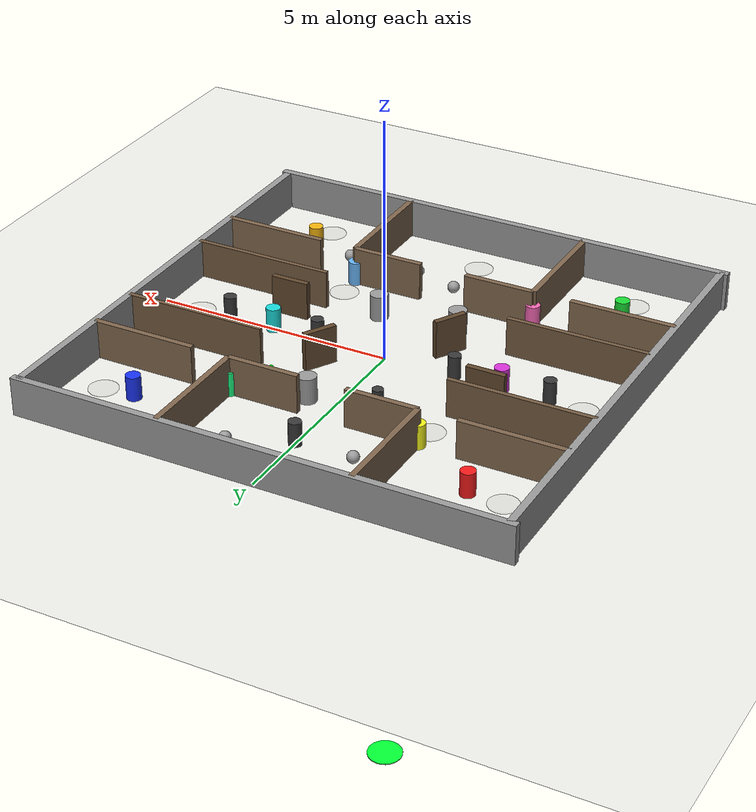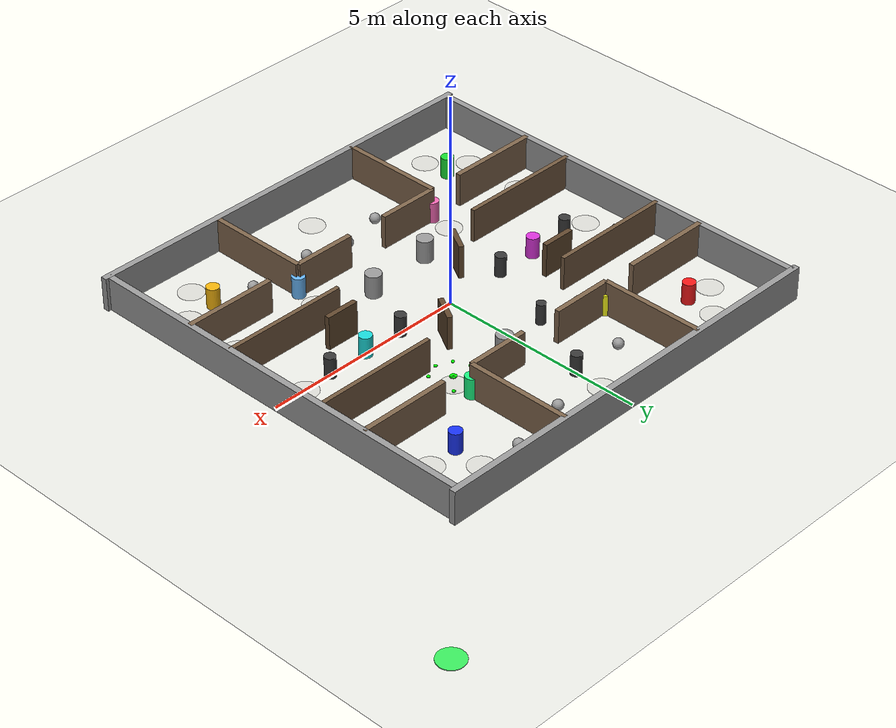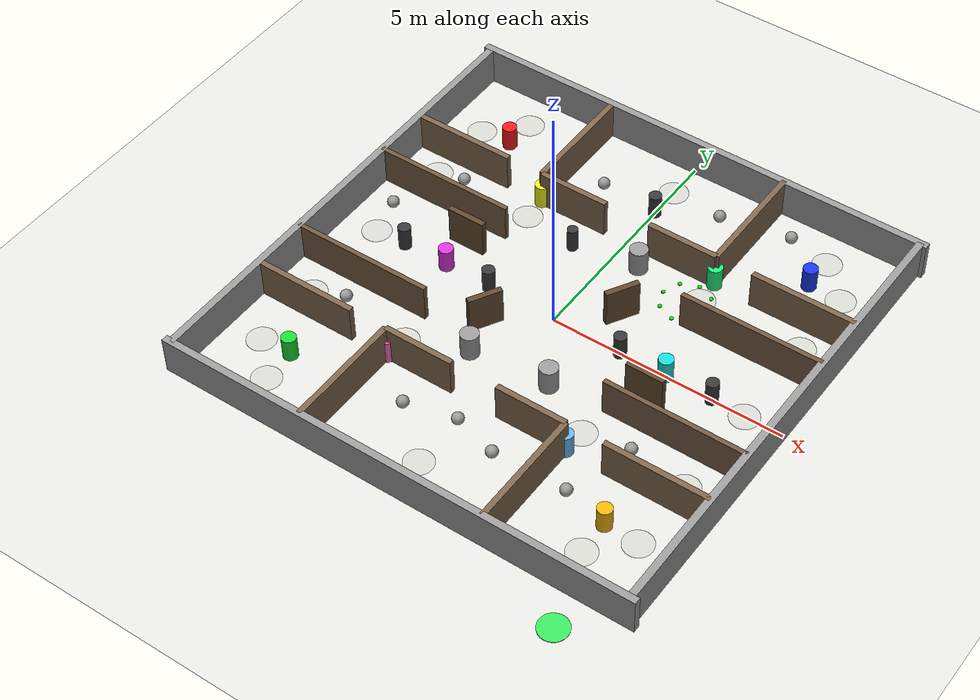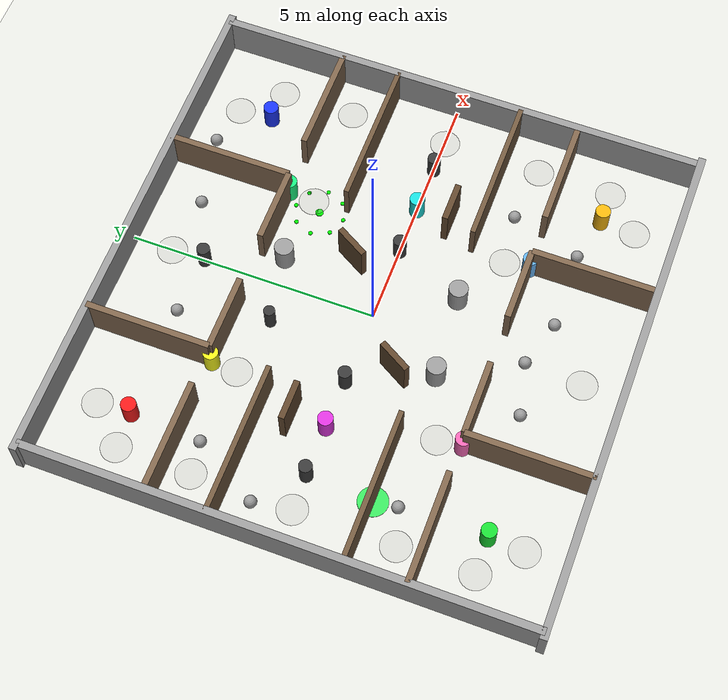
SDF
<sdf version="1.7">
 <world name="phase3_arena">
  <model name="ground_plane">
   <static>1</static>
   <link name="link">
    <collision name="collision">
     <geometry><plane><normal>0 0 1</normal><size>100 100</size></plane></geometry>
     <surface><friction><ode><mu>100</mu><mu2>50</mu2></ode></friction></surface>
    </collision>
    <visual name="visual">
     <cast_shadows>0</cast_shadows>
     <geometry><plane><normal>0 0 1</normal><size>100 100</size></plane></geometry>
     <material>
      <script><uri>file://media/materials/scripts/gazebo.material</uri><name>Gazebo/Grey</name></script>
     </material>
    </visual>
   </link>
  </model>
  <light name="sun" type="directional">
   <pose>0 0 10 0 -0 0</pose>
   <diffuse>0.8 0.8 0.8 1</diffuse>
   <specular>0.2 0.2 0.2 1</specular>
   <attenuation>
    <range>1000</range>
    <constant>0.9</constant>
    <linear>0.01</linear>
    <quadratic>0.001</quadratic>
   </attenuation>
   <direction>-0.5 0.1 -0.9</direction>
   <spot><inner_angle>0</inner_angle><outer_angle>0</outer_angle><falloff>0</falloff></spot>
  </light>
  <scene><shadows>0</shadows><ambient>0.4 0.4 0.4 1</ambient><background>0.7 0.7 0.7 1</background></scene>
  <physics type="ode">
   <real_time_update_rate>1000</real_time_update_rate>
   <max_step_size>0.001</max_step_size>
   <real_time_factor>1</real_time_factor>
   <ode>
    <solver>
     <type>quick</type>
     <iters>150</iters>
     <sor>1.4</sor>
     <use_dynamic_moi_rescaling>1</use_dynamic_moi_rescaling>
    </solver>
    <constraints>
     <cfm>1e-05</cfm>
     <erp>0.2</erp>
     <contact_max_correcting_vel>2000</contact_max_correcting_vel>
     <contact_surface_layer>0.01</contact_surface_layer>
    </constraints>
   </ode>
  </physics>
  <plugin name="gazebo_ros_state" filename="libgazebo_ros_state.so"><update_rate>25</update_rate></plugin>
  <model name="wN">
   <static>1</static>
   <pose>0 5 0.4 0 -0 0</pose>
   <link name="l">
    <collision name="c"><geometry><box><size>10.3 0.15 0.8</size></box></geometry></collision>
    <visual name="v">
     <geometry><box><size>10.3 0.15 0.8</size></box></geometry>
     <material><ambient>0.6 0.6 0.6 1</ambient><diffuse>0.6 0.6 0.6 1</diffuse></material>
    </visual>
   </link>
  </model>
  <model name="wS">
   <static>1</static>
   <pose>0 -5 0.4 0 -0 0</pose>
   <link name="l">
    <collision name="c"><geometry><box><size>10.3 0.15 0.8</size></box></geometry></collision>
    <visual name="v">
     <geometry><box><size>10.3 0.15 0.8</size></box></geometry>
     <material><ambient>0.6 0.6 0.6 1</ambient><diffuse>0.6 0.6 0.6 1</diffuse></material>
    </visual>
   </link>
  </model>
  <model name="wE">
   <static>1</static>
   <pose>5 0 0.4 0 -0 0</pose>
   <link name="l">
    <collision name="c"><geometry><box><size>0.15 10 0.8</size></box></geometry></collision>
    <visual name="v">
     <geometry><box><size>0.15 10 0.8</size></box></geometry>
     <material><ambient>0.6 0.6 0.6 1</ambient><diffuse>0.6 0.6 0.6 1</diffuse></material>
    </visual>
   </link>
  </model>
  <model name="wW">
   <static>1</static>
   <pose>-5 0 0.4 0 -0 0</pose>
   <link name="l">
    <collision name="c"><geometry><box><size>0.15 10 0.8</size></box></geometry></collision>
    <visual name="v">
     <geometry><box><size>0.15 10 0.8</size></box></geometry>
     <material><ambient>0.6 0.6 0.6 1</ambient><diffuse>0.6 0.6 0.6 1</diffuse></material>
    </visual>
   </link>
  </model>
  <model name="dU_L">
   <static>1</static>
   <pose>-3.9 2.5 0.4 0 -0 0</pose>
   <link name="l">
    <collision name="c"><geometry><box><size>2.2 0.12 0.8</size></box></geometry></collision>
    <visual name="v">
     <geometry><box><size>2.2 0.12 0.8</size></box></geometry>
     <material><ambient>0.5 0.4 0.3 1</ambient><diffuse>0.5 0.4 0.3 1</diffuse></material>
    </visual>
   </link>
  </model>
  <model name="dU_R">
   <static>1</static>
   <pose>3.9 2.5 0.4 0 -0 0</pose>
   <link name="l">
    <collision name="c"><geometry><box><size>2.2 0.12 0.8</size></box></geometry></collision>
    <visual name="v">
     <geometry><box><size>2.2 0.12 0.8</size></box></geometry>
     <material><ambient>0.5 0.4 0.3 1</ambient><diffuse>0.5 0.4 0.3 1</diffuse></material>
    </visual>
   </link>
  </model>
  <model name="dU_CL">
   <static>1</static>
   <pose>-1.25 2.5 0.4 0 -0 0</pose>
   <link name="l">
    <collision name="c"><geometry><box><size>1.5 0.12 0.8</size></box></geometry></collision>
    <visual name="v">
     <geometry><box><size>1.5 0.12 0.8</size></box></geometry>
     <material><ambient>0.5 0.4 0.3 1</ambient><diffuse>0.5 0.4 0.3 1</diffuse></material>
    </visual>
   </link>
  </model>
  <model name="dU_CR">
   <static>1</static>
   <pose>1.25 2.5 0.4 0 -0 0</pose>
   <link name="l">
    <collision name="c"><geometry><box><size>1.5 0.12 0.8</size></box></geometry></collision>
    <visual name="v">
     <geometry><box><size>1.5 0.12 0.8</size></box></geometry>
     <material><ambient>0.5 0.4 0.3 1</ambient><diffuse>0.5 0.4 0.3 1</diffuse></material>
    </visual>
   </link>
  </model>
  <model name="dD_L">
   <static>1</static>
   <pose>-3.9 -2.5 0.4 0 -0 0</pose>
   <link name="l">
    <collision name="c"><geometry><box><size>2.2 0.12 0.8</size></box></geometry></collision>
    <visual name="v">
     <geometry><box><size>2.2 0.12 0.8</size></box></geometry>
     <material><ambient>0.5 0.4 0.3 1</ambient><diffuse>0.5 0.4 0.3 1</diffuse></material>
    </visual>
   </link>
  </model>
  <model name="dD_R">
   <static>1</static>
   <pose>3.9 -2.5 0.4 0 -0 0</pose>
   <link name="l">
    <collision name="c"><geometry><box><size>2.2 0.12 0.8</size></box></geometry></collision>
    <visual name="v">
     <geometry><box><size>2.2 0.12 0.8</size></box></geometry>
     <material><ambient>0.5 0.4 0.3 1</ambient><diffuse>0.5 0.4 0.3 1</diffuse></material>
    </visual>
   </link>
  </model>
  <model name="dD_CL">
   <static>1</static>
   <pose>-1.25 -2.5 0.4 0 -0 0</pose>
   <link name="l">
    <collision name="c"><geometry><box><size>1.5 0.12 0.8</size></box></geometry></collision>
    <visual name="v">
     <geometry><box><size>1.5 0.12 0.8</size></box></geometry>
     <material><ambient>0.5 0.4 0.3 1</ambient><diffuse>0.5 0.4 0.3 1</diffuse></material>
    </visual>
   </link>
  </model>
  <model name="dD_CR">
   <static>1</static>
   <pose>1.25 -2.5 0.4 0 -0 0</pose>
   <link name="l">
    <collision name="c"><geometry><box><size>1.5 0.12 0.8</size></box></geometry></collision>
    <visual name="v">
     <geometry><box><size>1.5 0.12 0.8</size></box></geometry>
     <material><ambient>0.5 0.4 0.3 1</ambient><diffuse>0.5 0.4 0.3 1</diffuse></material>
    </visual>
   </link>
  </model>
  <model name="iU_L">
   <static>1</static>
   <pose>-3.5 1.3 0.4 0 -0 0</pose>
   <link name="l">
    <collision name="c"><geometry><box><size>3 0.1 0.8</size></box></geometry></collision>
    <visual name="v">
     <geometry><box><size>3 0.1 0.8</size></box></geometry>
     <material><ambient>0.45 0.35 0.25 1</ambient><diffuse>0.45 0.35 0.25 1</diffuse></material>
    </visual>
   </link>
  </model>
  <model name="iU_R">
   <static>1</static>
   <pose>3.5 1.3 0.4 0 -0 0</pose>
   <link name="l">
    <collision name="c"><geometry><box><size>3 0.1 0.8</size></box></geometry></collision>
    <visual name="v">
     <geometry><box><size>3 0.1 0.8</size></box></geometry>
     <material><ambient>0.45 0.35 0.25 1</ambient><diffuse>0.45 0.35 0.25 1</diffuse></material>
    </visual>
   </link>
  </model>
  <model name="iD_L">
   <static>1</static>
   <pose>-3.5 -1.3 0.4 0 -0 0</pose>
   <link name="l">
    <collision name="c"><geometry><box><size>3 0.1 0.8</size></box></geometry></collision>
    <visual name="v">
     <geometry><box><size>3 0.1 0.8</size></box></geometry>
     <material><ambient>0.45 0.35 0.25 1</ambient><diffuse>0.45 0.35 0.25 1</diffuse></material>
    </visual>
   </link>
  </model>
  <model name="iD_R">
   <static>1</static>
   <pose>3.5 -1.3 0.4 0 -0 0</pose>
   <link name="l">
    <collision name="c"><geometry><box><size>3 0.1 0.8</size></box></geometry></collision>
    <visual name="v">
     <geometry><box><size>3 0.1 0.8</size></box></geometry>
     <material><ambient>0.45 0.35 0.25 1</ambient><diffuse>0.45 0.35 0.25 1</diffuse></material>
    </visual>
   </link>
  </model>
  <model name="vNL">
   <static>1</static>
   <pose>-2 3.75 0.4 0 -0 0</pose>
   <link name="l">
    <collision name="c"><geometry><box><size>0.12 2.5 0.8</size></box></geometry></collision>
    <visual name="v">
     <geometry><box><size>0.12 2.5 0.8</size></box></geometry>
     <material><ambient>0.5 0.4 0.3 1</ambient><diffuse>0.5 0.4 0.3 1</diffuse></material>
    </visual>
   </link>
  </model>
  <model name="vNR">
   <static>1</static>
   <pose>2 3.75 0.4 0 -0 0</pose>
   <link name="l">
    <collision name="c"><geometry><box><size>0.12 2.5 0.8</size></box></geometry></collision>
    <visual name="v">
     <geometry><box><size>0.12 2.5 0.8</size></box></geometry>
     <material><ambient>0.5 0.4 0.3 1</ambient><diffuse>0.5 0.4 0.3 1</diffuse></material>
    </visual>
   </link>
  </model>
  <model name="vSL">
   <static>1</static>
   <pose>-2 -3.75 0.4 0 -0 0</pose>
   <link name="l">
    <collision name="c"><geometry><box><size>0.12 2.5 0.8</size></box></geometry></collision>
    <visual name="v">
     <geometry><box><size>0.12 2.5 0.8</size></box></geometry>
     <material><ambient>0.5 0.4 0.3 1</ambient><diffuse>0.5 0.4 0.3 1</diffuse></material>
    </visual>
   </link>
  </model>
  <model name="vSR">
   <static>1</static>
   <pose>2 -3.75 0.4 0 -0 0</pose>
   <link name="l">
    <collision name="c"><geometry><box><size>0.12 2.5 0.8</size></box></geometry></collision>
    <visual name="v">
     <geometry><box><size>0.12 2.5 0.8</size></box></geometry>
     <material><ambient>0.5 0.4 0.3 1</ambient><diffuse>0.5 0.4 0.3 1</diffuse></material>
    </visual>
   </link>
  </model>
  <model name="stA">
   <static>1</static>
   <pose>-2.5 0.7 0.4 0 -0 0</pose>
   <link name="l">
    <collision name="c"><geometry><box><size>0.8 0.12 0.8</size></box></geometry></collision>
    <visual name="v">
     <geometry><box><size>0.8 0.12 0.8</size></box></geometry>
     <material><ambient>0.38 0.28 0.18 1</ambient><diffuse>0.38 0.28 0.18 1</diffuse></material>
    </visual>
   </link>
  </model>
  <model name="stB">
   <static>1</static>
   <pose>2.5 -0.7 0.4 0 -0 0</pose>
   <link name="l">
    <collision name="c"><geometry><box><size>0.8 0.12 0.8</size></box></geometry></collision>
    <visual name="v">
     <geometry><box><size>0.8 0.12 0.8</size></box></geometry>
     <material><ambient>0.38 0.28 0.18 1</ambient><diffuse>0.38 0.28 0.18 1</diffuse></material>
    </visual>
   </link>
  </model>
  <model name="stC">
   <static>1</static>
   <pose>-1 -0.8 0.4 0 -0 1.047</pose>
   <link name="l">
    <collision name="c"><geometry><box><size>0.7 0.12 0.8</size></box></geometry></collision>
    <visual name="v">
     <geometry><box><size>0.7 0.12 0.8</size></box></geometry>
     <material><ambient>0.38 0.28 0.18 1</ambient><diffuse>0.38 0.28 0.18 1</diffuse></material>
    </visual>
   </link>
  </model>
  <model name="stD">
   <static>1</static>
   <pose>1 0.8 0.4 0 -0 1.047</pose>
   <link name="l">
    <collision name="c"><geometry><box><size>0.7 0.12 0.8</size></box></geometry></collision>
    <visual name="v">
     <geometry><box><size>0.7 0.12 0.8</size></box></geometry>
     <material><ambient>0.38 0.28 0.18 1</ambient><diffuse>0.38 0.28 0.18 1</diffuse></material>
    </visual>
   </link>
  </model>
  <model name="s1">
   <pose>-1.5 0 0.25 0 -0 0</pose>
   <link name="l">
    <inertial>
     <mass>3</mass>
     <inertia><ixx>0.065</ixx><iyy>0.065</iyy><izz>0.025</izz><ixy>0</ixy><ixz>0</ixz><iyz>0</iyz></inertia>
    </inertial>
    <collision name="c">
     <geometry><cylinder><radius>0.13</radius><length>0.5</length></cylinder></geometry>
    </collision>
    <visual name="v">
     <geometry><cylinder><radius>0.13</radius><length>0.5</length></cylinder></geometry>
     <material><ambient>0.22 0.22 0.22 1</ambient><diffuse>0.22 0.22 0.22 1</diffuse></material>
    </visual>
    <kinematic>1</kinematic>
   </link>
   <plugin name="pm" filename="libgazebo_ros_planar_move.so">
    <ros><namespace>/s1</namespace></ros>
    <update_rate>20</update_rate>
    <publish_odom>0</publish_odom>
    <publish_odom_tf>0</publish_odom_tf>
   </plugin>
  </model>
  <model name="s2">
   <pose>1.5 0 0.25 0 -0 0</pose>
   <link name="l">
    <inertial>
     <mass>3</mass>
     <inertia><ixx>0.065</ixx><iyy>0.065</iyy><izz>0.025</izz><ixy>0</ixy><ixz>0</ixz><iyz>0</iyz></inertia>
    </inertial>
    <collision name="c">
     <geometry><cylinder><radius>0.13</radius><length>0.5</length></cylinder></geometry>
    </collision>
    <visual name="v">
     <geometry><cylinder><radius>0.13</radius><length>0.5</length></cylinder></geometry>
     <material><ambient>0.22 0.22 0.22 1</ambient><diffuse>0.22 0.22 0.22 1</diffuse></material>
    </visual>
    <kinematic>1</kinematic>
   </link>
   <plugin name="pm" filename="libgazebo_ros_planar_move.so">
    <ros><namespace>/s2</namespace></ros>
    <update_rate>20</update_rate>
    <publish_odom>0</publish_odom>
    <publish_odom_tf>0</publish_odom_tf>
   </plugin>
  </model>
  <model name="s6">
   <pose>-3.5 0 0.25 0 -0 0</pose>
   <link name="l">
    <inertial>
     <mass>3</mass>
     <inertia><ixx>0.065</ixx><iyy>0.065</iyy><izz>0.025</izz><ixy>0</ixy><ixz>0</ixz><iyz>0</iyz></inertia>
    </inertial>
    <collision name="c">
     <geometry><cylinder><radius>0.13</radius><length>0.5</length></cylinder></geometry>
    </collision>
    <visual name="v">
     <geometry><cylinder><radius>0.13</radius><length>0.5</length></cylinder></geometry>
     <material><ambient>0.22 0.22 0.22 1</ambient><diffuse>0.22 0.22 0.22 1</diffuse></material>
    </visual>
    <kinematic>1</kinematic>
   </link>
   <plugin name="pm" filename="libgazebo_ros_planar_move.so">
    <ros><namespace>/s6</namespace></ros>
    <update_rate>20</update_rate>
    <publish_odom>0</publish_odom>
    <publish_odom_tf>0</publish_odom_tf>
   </plugin>
  </model>
  <model name="s7">
   <pose>3.5 0 0.25 0 -0 0</pose>
   <link name="l">
    <inertial>
     <mass>3</mass>
     <inertia><ixx>0.065</ixx><iyy>0.065</iyy><izz>0.025</izz><ixy>0</ixy><ixz>0</ixz><iyz>0</iyz></inertia>
    </inertial>
    <collision name="c">
     <geometry><cylinder><radius>0.13</radius><length>0.5</length></cylinder></geometry>
    </collision>
    <visual name="v">
     <geometry><cylinder><radius>0.13</radius><length>0.5</length></cylinder></geometry>
     <material><ambient>0.22 0.22 0.22 1</ambient><diffuse>0.22 0.22 0.22 1</diffuse></material>
    </visual>
    <kinematic>1</kinematic>
   </link>
   <plugin name="pm" filename="libgazebo_ros_planar_move.so">
    <ros><namespace>/s7</namespace></ros>
    <update_rate>20</update_rate>
    <publish_odom>0</publish_odom>
    <publish_odom_tf>0</publish_odom_tf>
   </plugin>
  </model>
  <model name="s8">
   <pose>-0.8 1.8 0.25 0 -0 0</pose>
   <link name="l">
    <inertial>
     <mass>3</mass>
     <inertia><ixx>0.065</ixx><iyy>0.065</iyy><izz>0.025</izz><ixy>0</ixy><ixz>0</ixz><iyz>0</iyz></inertia>
    </inertial>
    <collision name="c">
     <geometry><cylinder><radius>0.11</radius><length>0.5</length></cylinder></geometry>
    </collision>
    <visual name="v">
     <geometry><cylinder><radius>0.11</radius><length>0.5</length></cylinder></geometry>
     <material><ambient>0.22 0.22 0.22 1</ambient><diffuse>0.22 0.22 0.22 1</diffuse></material>
    </visual>
    <kinematic>1</kinematic>
   </link>
   <plugin name="pm" filename="libgazebo_ros_planar_move.so">
    <ros><namespace>/s8</namespace></ros>
    <update_rate>20</update_rate>
    <publish_odom>0</publish_odom>
    <publish_odom_tf>0</publish_odom_tf>
   </plugin>
  </model>
  <model name="s10">
   <pose>0 3.5 0.25 0 -0 0</pose>
   <link name="l">
    <inertial>
     <mass>3</mass>
     <inertia><ixx>0.065</ixx><iyy>0.065</iyy><izz>0.025</izz><ixy>0</ixy><ixz>0</ixz><iyz>0</iyz></inertia>
    </inertial>
    <collision name="c">
     <geometry><cylinder><radius>0.13</radius><length>0.5</length></cylinder></geometry>
    </collision>
    <visual name="v">
     <geometry><cylinder><radius>0.13</radius><length>0.5</length></cylinder></geometry>
     <material><ambient>0.22 0.22 0.22 1</ambient><diffuse>0.22 0.22 0.22 1</diffuse></material>
    </visual>
    <kinematic>1</kinematic>
   </link>
   <plugin name="pm" filename="libgazebo_ros_planar_move.so">
    <ros><namespace>/s10</namespace></ros>
    <update_rate>20</update_rate>
    <publish_odom>0</publish_odom>
    <publish_odom_tf>0</publish_odom_tf>
   </plugin>
  </model>
  <model name="dyn_obs_1">
   <pose>-3.5 3.5 0.25 0 -0 0</pose>
   <link name="link">
    <inertial>
     <mass>3</mass>
     <inertia><ixx>0.087</ixx><iyy>0.087</iyy><izz>0.034</izz><ixy>0</ixy><ixz>0</ixz><iyz>0</iyz></inertia>
    </inertial>
    <collision name="c">
     <geometry><cylinder><radius>0.15</radius><length>0.5</length></cylinder></geometry>
     <surface>
      <friction><ode><mu>0</mu><mu2>0</mu2></ode></friction>
      <contact><ode><min_depth>0.001</min_depth></ode></contact>
     </surface>
    </collision>
    <visual name="v">
     <geometry><cylinder><radius>0.15</radius><length>0.5</length></cylinder></geometry>
     <material><ambient>0.95 0.1 0.1 1</ambient><diffuse>0.95 0.1 0.1 1</diffuse></material>
    </visual>
   </link>
   <plugin name="pm" filename="libgazebo_ros_planar_move.so">
    <ros><namespace>/dyn_obs_1</namespace></ros>
    <update_rate>20</update_rate>
    <publish_odom>0</publish_odom>
    <publish_odom_tf>0</publish_odom_tf>
   </plugin>
  </model>
  <model name="dyn_obs_2">
   <pose>3.5 3.5 0.25 0 -0 0</pose>
   <link name="link">
    <inertial>
     <mass>3</mass>
     <inertia><ixx>0.087</ixx><iyy>0.087</iyy><izz>0.034</izz><ixy>0</ixy><ixz>0</ixz><iyz>0</iyz></inertia>
    </inertial>
    <collision name="c">
     <geometry><cylinder><radius>0.15</radius><length>0.5</length></cylinder></geometry>
     <surface>
      <friction><ode><mu>0</mu><mu2>0</mu2></ode></friction>
      <contact><ode><min_depth>0.001</min_depth></ode></contact>
     </surface>
    </collision>
    <visual name="v">
     <geometry><cylinder><radius>0.15</radius><length>0.5</length></cylinder></geometry>
     <material><ambient>0.1 0.2 0.95 1</ambient><diffuse>0.1 0.2 0.95 1</diffuse></material>
    </visual>
   </link>
   <plugin name="pm" filename="libgazebo_ros_planar_move.so">
    <ros><namespace>/dyn_obs_2</namespace></ros>
    <update_rate>20</update_rate>
    <publish_odom>0</publish_odom>
    <publish_odom_tf>0</publish_odom_tf>
   </plugin>
  </model>
  <model name="dyn_obs_3">
   <pose>-3.5 -3.5 0.25 0 -0 0</pose>
   <link name="link">
    <inertial>
     <mass>3</mass>
     <inertia><ixx>0.087</ixx><iyy>0.087</iyy><izz>0.034</izz><ixy>0</ixy><ixz>0</ixz><iyz>0</iyz></inertia>
    </inertial>
    <collision name="c">
     <geometry><cylinder><radius>0.15</radius><length>0.5</length></cylinder></geometry>
     <surface>
      <friction><ode><mu>0</mu><mu2>0</mu2></ode></friction>
      <contact><ode><min_depth>0.001</min_depth></ode></contact>
     </surface>
    </collision>
    <visual name="v">
     <geometry><cylinder><radius>0.15</radius><length>0.5</length></cylinder></geometry>
     <material><ambient>0.1 0.85 0.2 1</ambient><diffuse>0.1 0.85 0.2 1</diffuse></material>
    </visual>
   </link>
   <plugin name="pm" filename="libgazebo_ros_planar_move.so">
    <ros><namespace>/dyn_obs_3</namespace></ros>
    <update_rate>20</update_rate>
    <publish_odom>0</publish_odom>
    <publish_odom_tf>0</publish_odom_tf>
   </plugin>
  </model>
  <model name="dyn_obs_4">
   <pose>3.5 -3.5 0.25 0 -0 0</pose>
   <link name="link">
    <inertial>
     <mass>3</mass>
     <inertia><ixx>0.087</ixx><iyy>0.087</iyy><izz>0.034</izz><ixy>0</ixy><ixz>0</ixz><iyz>0</iyz></inertia>
    </inertial>
    <collision name="c">
     <geometry><cylinder><radius>0.15</radius><length>0.5</length></cylinder></geometry>
     <surface>
      <friction><ode><mu>0</mu><mu2>0</mu2></ode></friction>
      <contact><ode><min_depth>0.001</min_depth></ode></contact>
     </surface>
    </collision>
    <visual name="v">
     <geometry><cylinder><radius>0.15</radius><length>0.5</length></cylinder></geometry>
     <material><ambient>0.95 0.7 0.05 1</ambient><diffuse>0.95 0.7 0.05 1</diffuse></material>
    </visual>
   </link>
   <plugin name="pm" filename="libgazebo_ros_planar_move.so">
    <ros><namespace>/dyn_obs_4</namespace></ros>
    <update_rate>20</update_rate>
    <publish_odom>0</publish_odom>
    <publish_odom_tf>0</publish_odom_tf>
   </plugin>
  </model>
  <model name="dyn_obs_5">
   <pose>-2.5 0 0.25 0 -0 0</pose>
   <link name="link">
    <inertial>
     <mass>3</mass>
     <inertia><ixx>0.087</ixx><iyy>0.087</iyy><izz>0.034</izz><ixy>0</ixy><ixz>0</ixz><iyz>0</iyz></inertia>
    </inertial>
    <collision name="c">
     <geometry><cylinder><radius>0.15</radius><length>0.5</length></cylinder></geometry>
     <surface>
      <friction><ode><mu>0</mu><mu2>0</mu2></ode></friction>
      <contact><ode><min_depth>0.001</min_depth></ode></contact>
     </surface>
    </collision>
    <visual name="v">
     <geometry><cylinder><radius>0.15</radius><length>0.5</length></cylinder></geometry>
     <material><ambient>0.85 0.2 0.85 1</ambient><diffuse>0.85 0.2 0.85 1</diffuse></material>
    </visual>
   </link>
   <plugin name="pm" filename="libgazebo_ros_planar_move.so">
    <ros><namespace>/dyn_obs_5</namespace></ros>
    <update_rate>20</update_rate>
    <publish_odom>0</publish_odom>
    <publish_odom_tf>0</publish_odom_tf>
   </plugin>
  </model>
  <model name="dyn_obs_6">
   <pose>2.5 0 0.25 0 -0 0</pose>
   <link name="link">
    <inertial>
     <mass>3</mass>
     <inertia><ixx>0.087</ixx><iyy>0.087</iyy><izz>0.034</izz><ixy>0</ixy><ixz>0</ixz><iyz>0</iyz></inertia>
    </inertial>
    <collision name="c">
     <geometry><cylinder><radius>0.15</radius><length>0.5</length></cylinder></geometry>
     <surface>
      <friction><ode><mu>0</mu><mu2>0</mu2></ode></friction>
      <contact><ode><min_depth>0.001</min_depth></ode></contact>
     </surface>
    </collision>
    <visual name="v">
     <geometry><cylinder><radius>0.15</radius><length>0.5</length></cylinder></geometry>
     <material><ambient>0.1 0.85 0.85 1</ambient><diffuse>0.1 0.85 0.85 1</diffuse></material>
    </visual>
   </link>
   <plugin name="pm" filename="libgazebo_ros_planar_move.so">
    <ros><namespace>/dyn_obs_6</namespace></ros>
    <update_rate>20</update_rate>
    <publish_odom>0</publish_odom>
    <publish_odom_tf>0</publish_odom_tf>
   </plugin>
  </model>
  <model name="dyn_obs_9">
   <pose>-2 2.5 0.25 0 -0 0</pose>
   <link name="link">
    <inertial>
     <mass>3</mass>
     <inertia><ixx>0.087</ixx><iyy>0.087</iyy><izz>0.034</izz><ixy>0</ixy><ixz>0</ixz><iyz>0</iyz></inertia>
    </inertial>
    <collision name="c">
     <geometry><cylinder><radius>0.15</radius><length>0.5</length></cylinder></geometry>
     <surface>
      <friction><ode><mu>0</mu><mu2>0</mu2></ode></friction>
      <contact><ode><min_depth>0.001</min_depth></ode></contact>
     </surface>
    </collision>
    <visual name="v">
     <geometry><cylinder><radius>0.15</radius><length>0.5</length></cylinder></geometry>
     <material><ambient>0.95 0.95 0.1 1</ambient><diffuse>0.95 0.95 0.1 1</diffuse></material>
    </visual>
   </link>
   <plugin name="pm" filename="libgazebo_ros_planar_move.so">
    <ros><namespace>/dyn_obs_9</namespace></ros>
    <update_rate>20</update_rate>
    <publish_odom>0</publish_odom>
    <publish_odom_tf>0</publish_odom_tf>
   </plugin>
  </model>
  <model name="dyn_obs_10">
   <pose>2 2.5 0.25 0 -0 0</pose>
   <link name="link">
    <inertial>
     <mass>3</mass>
     <inertia><ixx>0.087</ixx><iyy>0.087</iyy><izz>0.034</izz><ixy>0</ixy><ixz>0</ixz><iyz>0</iyz></inertia>
    </inertial>
    <collision name="c">
     <geometry><cylinder><radius>0.15</radius><length>0.5</length></cylinder></geometry>
     <surface>
      <friction><ode><mu>0</mu><mu2>0</mu2></ode></friction>
      <contact><ode><min_depth>0.001</min_depth></ode></contact>
     </surface>
    </collision>
    <visual name="v">
     <geometry><cylinder><radius>0.15</radius><length>0.5</length></cylinder></geometry>
     <material><ambient>0.1 0.95 0.5 1</ambient><diffuse>0.1 0.95 0.5 1</diffuse></material>
    </visual>
   </link>
   <plugin name="pm" filename="libgazebo_ros_planar_move.so">
    <ros><namespace>/dyn_obs_10</namespace></ros>
    <update_rate>20</update_rate>
    <publish_odom>0</publish_odom>
    <publish_odom_tf>0</publish_odom_tf>
   </plugin>
  </model>
  <model name="dyn_obs_11">
   <pose>-2 -2.5 0.25 0 -0 0</pose>
   <link name="link">
    <inertial>
     <mass>3</mass>
     <inertia><ixx>0.087</ixx><iyy>0.087</iyy><izz>0.034</izz><ixy>0</ixy><ixz>0</ixz><iyz>0</iyz></inertia>
    </inertial>
    <collision name="c">
     <geometry><cylinder><radius>0.15</radius><length>0.5</length></cylinder></geometry>
     <surface>
      <friction><ode><mu>0</mu><mu2>0</mu2></ode></friction>
      <contact><ode><min_depth>0.001</min_depth></ode></contact>
     </surface>
    </collision>
    <visual name="v">
     <geometry><cylinder><radius>0.15</radius><length>0.5</length></cylinder></geometry>
     <material><ambient>0.95 0.4 0.7 1</ambient><diffuse>0.95 0.4 0.7 1</diffuse></material>
    </visual>
   </link>
   <plugin name="pm" filename="libgazebo_ros_planar_move.so">
    <ros><namespace>/dyn_obs_11</namespace></ros>
    <update_rate>20</update_rate>
    <publish_odom>0</publish_odom>
    <publish_odom_tf>0</publish_odom_tf>
   </plugin>
  </model>
  <model name="dyn_obs_12">
   <pose>2 -2.5 0.25 0 -0 0</pose>
   <link name="link">
    <inertial>
     <mass>3</mass>
     <inertia><ixx>0.087</ixx><iyy>0.087</iyy><izz>0.034</izz><ixy>0</ixy><ixz>0</ixz><iyz>0</iyz></inertia>
    </inertial>
    <collision name="c">
     <geometry><cylinder><radius>0.15</radius><length>0.5</length></cylinder></geometry>
     <surface>
      <friction><ode><mu>0</mu><mu2>0</mu2></ode></friction>
      <contact><ode><min_depth>0.001</min_depth></ode></contact>
     </surface>
    </collision>
    <visual name="v">
     <geometry><cylinder><radius>0.15</radius><length>0.5</length></cylinder></geometry>
     <material><ambient>0.4 0.7 0.95 1</ambient><diffuse>0.4 0.7 0.95 1</diffuse></material>
    </visual>
   </link>
   <plugin name="pm" filename="libgazebo_ros_planar_move.so">
    <ros><namespace>/dyn_obs_12</namespace></ros>
    <update_rate>20</update_rate>
    <publish_odom>0</publish_odom>
    <publish_odom_tf>0</publish_odom_tf>
   </plugin>
  </model>
  <model name="active_goal_marker">
   <static>1</static>
   <pose>0 0 -10 0 -0 0</pose>
   <link name="l">
    <visual name="v">
     <geometry><cylinder><radius>0.4</radius><length>0.02</length></cylinder></geometry>
     <material><ambient>0 1 0.2 0.9</ambient><diffuse>0 1 0.2 0.9</diffuse></material>
    </visual>
   </link>
  </model>
  <model name="static_target_0">
   <static>1</static>
   <pose>0 4.2 0.01 0 -0 0</pose>
   <link name="l">
    <visual name="v">
     <geometry><cylinder><radius>0.3</radius><length>0.02</length></cylinder></geometry>
     <material><ambient>0.6 0.6 0.6 0.3</ambient><diffuse>0.6 0.6 0.6 0.3</diffuse></material>
    </visual>
   </link>
  </model>
  <model name="static_target_2">
   <static>1</static>
   <pose>-4.2 0 0.01 0 -0 0</pose>
   <link name="l">
    <visual name="v">
     <geometry><cylinder><radius>0.3</radius><length>0.02</length></cylinder></geometry>
     <material><ambient>0.6 0.6 0.6 0.3</ambient><diffuse>0.6 0.6 0.6 0.3</diffuse></material>
    </visual>
   </link>
  </model>
  <model name="static_target_3">
   <static>1</static>
   <pose>4.2 0 0.01 0 -0 0</pose>
   <link name="l">
    <visual name="v">
     <geometry><cylinder><radius>0.3</radius><length>0.02</length></cylinder></geometry>
     <material><ambient>0.6 0.6 0.6 0.3</ambient><diffuse>0.6 0.6 0.6 0.3</diffuse></material>
    </visual>
   </link>
  </model>
  <model name="static_target_5">
   <static>1</static>
   <pose>0 -4.2 0.01 0 -0 0</pose>
   <link name="l">
    <visual name="v">
     <geometry><cylinder><radius>0.3</radius><length>0.02</length></cylinder></geometry>
     <material><ambient>0.6 0.6 0.6 0.3</ambient><diffuse>0.6 0.6 0.6 0.3</diffuse></material>
    </visual>
   </link>
  </model>
  <model name="static_target_10">
   <static>1</static>
   <pose>-2 2 0.01 0 -0 0</pose>
   <link name="l">
    <visual name="v">
     <geometry><cylinder><radius>0.3</radius><length>0.02</length></cylinder></geometry>
     <material><ambient>0.6 0.6 0.6 0.3</ambient><diffuse>0.6 0.6 0.6 0.3</diffuse></material>
    </visual>
   </link>
  </model>
  <model name="static_target_11">
   <static>1</static>
   <pose>2 2 0.01 0 -0 0</pose>
   <link name="l">
    <visual name="v">
     <geometry><cylinder><radius>0.3</radius><length>0.02</length></cylinder></geometry>
     <material><ambient>0.6 0.6 0.6 0.3</ambient><diffuse>0.6 0.6 0.6 0.3</diffuse></material>
    </visual>
   </link>
  </model>
  <model name="static_target_12">
   <static>1</static>
   <pose>-2 -2 0.01 0 -0 0</pose>
   <link name="l">
    <visual name="v">
     <geometry><cylinder><radius>0.3</radius><length>0.02</length></cylinder></geometry>
     <material><ambient>0.6 0.6 0.6 0.3</ambient><diffuse>0.6 0.6 0.6 0.3</diffuse></material>
    </visual>
   </link>
  </model>
  <model name="static_target_13">
   <static>1</static>
   <pose>2 -2 0.01 0 -0 0</pose>
   <link name="l">
    <visual name="v">
     <geometry><cylinder><radius>0.3</radius><length>0.02</length></cylinder></geometry>
     <material><ambient>0.6 0.6 0.6 0.3</ambient><diffuse>0.6 0.6 0.6 0.3</diffuse></material>
    </visual>
   </link>
  </model>
  <model name="static_target_14">
   <static>1</static>
   <pose>-4.2 2 0.01 0 -0 0</pose>
   <link name="l">
    <visual name="v">
     <geometry><cylinder><radius>0.3</radius><length>0.02</length></cylinder></geometry>
     <material><ambient>0.6 0.6 0.6 0.3</ambient><diffuse>0.6 0.6 0.6 0.3</diffuse></material>
    </visual>
   </link>
  </model>
  <model name="static_target_15">
   <static>1</static>
   <pose>4.2 2 0.01 0 -0 0</pose>
   <link name="l">
    <visual name="v">
     <geometry><cylinder><radius>0.3</radius><length>0.02</length></cylinder></geometry>
     <material><ambient>0.6 0.6 0.6 0.3</ambient><diffuse>0.6 0.6 0.6 0.3</diffuse></material>
    </visual>
   </link>
  </model>
  <model name="static_target_16">
   <static>1</static>
   <pose>-4.2 -2 0.01 0 -0 0</pose>
   <link name="l">
    <visual name="v">
     <geometry><cylinder><radius>0.3</radius><length>0.02</length></cylinder></geometry>
     <material><ambient>0.6 0.6 0.6 0.3</ambient><diffuse>0.6 0.6 0.6 0.3</diffuse></material>
    </visual>
   </link>
  </model>
  <model name="static_target_17">
   <static>1</static>
   <pose>4.2 -2 0.01 0 -0 0</pose>
   <link name="l">
    <visual name="v">
     <geometry><cylinder><radius>0.3</radius><length>0.02</length></cylinder></geometry>
     <material><ambient>0.6 0.6 0.6 0.3</ambient><diffuse>0.6 0.6 0.6 0.3</diffuse></material>
    </visual>
   </link>
  </model>
  <model name="static_target_22">
   <static>1</static>
   <pose>-3.5 4.2 0.01 0 -0 0</pose>
   <link name="l">
    <visual name="v">
     <geometry><cylinder><radius>0.3</radius><length>0.02</length></cylinder></geometry>
     <material><ambient>0.6 0.6 0.6 0.3</ambient><diffuse>0.6 0.6 0.6 0.3</diffuse></material>
    </visual>
   </link>
  </model>
  <model name="static_target_23">
   <static>1</static>
   <pose>3.5 4.2 0.01 0 -0 0</pose>
   <link name="l">
    <visual name="v">
     <geometry><cylinder><radius>0.3</radius><length>0.02</length></cylinder></geometry>
     <material><ambient>0.6 0.6 0.6 0.3</ambient><diffuse>0.6 0.6 0.6 0.3</diffuse></material>
    </visual>
   </link>
  </model>
  <model name="static_target_24">
   <static>1</static>
   <pose>-3.5 -4.2 0.01 0 -0 0</pose>
   <link name="l">
    <visual name="v">
     <geometry><cylinder><radius>0.3</radius><length>0.02</length></cylinder></geometry>
     <material><ambient>0.6 0.6 0.6 0.3</ambient><diffuse>0.6 0.6 0.6 0.3</diffuse></material>
    </visual>
   </link>
  </model>
  <model name="static_target_25">
   <static>1</static>
   <pose>3.5 -4.2 0.01 0 -0 0</pose>
   <link name="l">
    <visual name="v">
     <geometry><cylinder><radius>0.3</radius><length>0.02</length></cylinder></geometry>
     <material><ambient>0.6 0.6 0.6 0.3</ambient><diffuse>0.6 0.6 0.6 0.3</diffuse></material>
    </visual>
   </link>
  </model>
  <model name="static_target_30">
   <static>1</static>
   <pose>-4.2 3.5 0.01 0 -0 0</pose>
   <link name="l">
    <visual name="v">
     <geometry><cylinder><radius>0.3</radius><length>0.02</length></cylinder></geometry>
     <material><ambient>0.6 0.6 0.6 0.3</ambient><diffuse>0.6 0.6 0.6 0.3</diffuse></material>
    </visual>
   </link>
  </model>
  <model name="static_target_31">
   <static>1</static>
   <pose>4.2 3.5 0.01 0 -0 0</pose>
   <link name="l">
    <visual name="v">
     <geometry><cylinder><radius>0.3</radius><length>0.02</length></cylinder></geometry>
     <material><ambient>0.6 0.6 0.6 0.3</ambient><diffuse>0.6 0.6 0.6 0.3</diffuse></material>
    </visual>
   </link>
  </model>
  <model name="static_target_32">
   <static>1</static>
   <pose>-4.2 -3.5 0.01 0 -0 0</pose>
   <link name="l">
    <visual name="v">
     <geometry><cylinder><radius>0.3</radius><length>0.02</length></cylinder></geometry>
     <material><ambient>0.6 0.6 0.6 0.3</ambient><diffuse>0.6 0.6 0.6 0.3</diffuse></material>
    </visual>
   </link>
  </model>
  <model name="static_target_33">
   <static>1</static>
   <pose>4.2 -3.5 0.01 0 -0 0</pose>
   <link name="l">
    <visual name="v">
     <geometry><cylinder><radius>0.3</radius><length>0.02</length></cylinder></geometry>
     <material><ambient>0.6 0.6 0.6 0.3</ambient><diffuse>0.6 0.6 0.6 0.3</diffuse></material>
    </visual>
   </link>
  </model>
  <gravity>0 0 -9.8</gravity>
  <magnetic_field>6e-06 2.3e-05 -4.2e-05</magnetic_field>
  <atmosphere type="adiabatic"/>
  <audio><device>default</device></audio>
  <spherical_coordinates>
   <surface_model>EARTH_WGS84</surface_model>
   <latitude_deg>0</latitude_deg>
   <longitude_deg>0</longitude_deg>
   <elevation>0</elevation>
   <heading_deg>0</heading_deg>
  </spherical_coordinates>
  <model name="unit_sphere_clone_clone">
   <pose>2.98558 -1.87661 0.123247 0 -0 0</pose>
   <link name="link">
    <inertial>
     <mass>1</mass>
     <inertia><ixx>0.1</ixx><ixy>0</ixy><ixz>0</ixz><iyy>0.1</iyy><iyz>0</iyz><izz>0.1</izz></inertia>
    </inertial>
    <collision name="collision"><geometry><sphere><radius>0.123247</radius></sphere></geometry></collision>
    <visual name="visual">
     <geometry><sphere><radius>0.123247</radius></sphere></geometry>
     <material>
      <script><name>Gazebo/Grey</name><uri>file://media/materials/scripts/gazebo.material</uri></script>
     </material>
    </visual>
   </link>
  </model>
  <model name="unit_sphere_clone_clone_clone">
   <pose>2.55839 -3.29701 0.123247 0 -0 0</pose>
   <link name="link">
    <inertial>
     <mass>1</mass>
     <inertia><ixx>0.1</ixx><ixy>0</ixy><ixz>0</ixz><iyy>0.1</iyy><iyz>0</iyz><izz>0.1</izz></inertia>
    </inertial>
    <collision name="collision"><geometry><sphere><radius>0.123247</radius></sphere></geometry></collision>
    <visual name="visual">
     <geometry><sphere><radius>0.123247</radius></sphere></geometry>
     <material>
      <script><name>Gazebo/Grey</name><uri>file://media/materials/scripts/gazebo.material</uri></script>
     </material>
    </visual>
   </link>
  </model>
  <model name="unit_sphere_clone_clone_clone_clone">
   <pose>-1.23281 3.54858 0.123247 0 -0 0</pose>
   <link name="link">
    <inertial>
     <mass>1</mass>
     <inertia><ixx>0.1</ixx><ixy>0</ixy><ixz>0</ixz><iyy>0.1</iyy><iyz>0</iyz><izz>0.1</izz></inertia>
    </inertial>
    <collision name="collision"><geometry><sphere><radius>0.123247</radius></sphere></geometry></collision>
    <visual name="visual">
     <geometry><sphere><radius>0.123247</radius></sphere></geometry>
     <material>
      <script><name>Gazebo/Grey</name><uri>file://media/materials/scripts/gazebo.material</uri></script>
     </material>
    </visual>
   </link>
  </model>
  <light name="user_spot_light_0" type="spot">
   <pose>0.012206 -0.148753 1 0 -0 0</pose>
   <diffuse>0.5 0.5 0.5 1</diffuse>
   <specular>0.1 0.1 0.1 1</specular>
   <direction>0 0 -1</direction>
   <attenuation>
    <range>20</range>
    <constant>0.5</constant>
    <linear>0.01</linear>
    <quadratic>0.001</quadratic>
   </attenuation>
   <cast_shadows>0</cast_shadows>
   <spot><inner_angle>0.6</inner_angle><outer_angle>1</outer_angle><falloff>1</falloff></spot>
  </light>
  <light name="user_point_light_0" type="point">
   <pose>-0.060079 -0.058411 1 0 -0 0</pose>
   <diffuse>0.5 0.5 0.5 1</diffuse>
   <specular>0.1 0.1 0.1 1</specular>
   <attenuation>
    <range>20</range>
    <constant>0.5</constant>
    <linear>0.01</linear>
    <quadratic>0.001</quadratic>
   </attenuation>
   <cast_shadows>0</cast_shadows>
   <direction>0 0 -1</direction>
   <spot><inner_angle>0</inner_angle><outer_angle>0</outer_angle><falloff>0</falloff></spot>
  </light>
  <model name="unit_sphere_clone_clone_clone_clone_clone">
   <pose>-1.03493 -3.30219 0.123247 0 -0 0</pose>
   <link name="link">
    <inertial>
     <mass>1</mass>
     <inertia><ixx>0.1</ixx><ixy>0</ixy><ixz>0</ixz><iyy>0.1</iyy><iyz>0</iyz><izz>0.1</izz></inertia>
    </inertial>
    <collision name="collision"><geometry><sphere><radius>0.123247</radius></sphere></geometry></collision>
    <visual name="visual">
     <geometry><sphere><radius>0.123247</radius></sphere></geometry>
     <material>
      <script><name>Gazebo/Grey</name><uri>file://media/materials/scripts/gazebo.material</uri></script>
     </material>
    </visual>
   </link>
  </model>
  <model name="unit_sphere_clone_clone_clone_clone_clone_2">
   <pose>1.15547 4.05779 0.123247 0 -0 0</pose>
   <link name="link">
    <inertial>
     <mass>1</mass>
     <inertia><ixx>0.1</ixx><ixy>0</ixy><ixz>0</ixz><iyy>0.1</iyy><iyz>0</iyz><izz>0.1</izz></inertia>
    </inertial>
    <collision name="collision"><geometry><sphere><radius>0.123247</radius></sphere></geometry></collision>
    <visual name="visual">
     <geometry><sphere><radius>0.123247</radius></sphere></geometry>
     <material>
      <script><name>Gazebo/Grey</name><uri>file://media/materials/scripts/gazebo.material</uri></script>
     </material>
    </visual>
   </link>
  </model>
  <model name="unit_sphere_clone_clone_clone_clone_clone_3">
   <pose>2.60894 4.3459 0.123247 0 -0 0</pose>
   <link name="link">
    <inertial>
     <mass>1</mass>
     <inertia><ixx>0.1</ixx><ixy>0</ixy><ixz>0</ixz><iyy>0.1</iyy><iyz>0</iyz><izz>0.1</izz></inertia>
    </inertial>
    <collision name="collision"><geometry><sphere><radius>0.123247</radius></sphere></geometry></collision>
    <visual name="visual">
     <geometry><sphere><radius>0.123247</radius></sphere></geometry>
     <material>
      <script><name>Gazebo/Grey</name><uri>file://media/materials/scripts/gazebo.material</uri></script>
     </material>
    </visual>
   </link>
  </model>
  <model name="unit_sphere_clone_clone_clone_clone_clone_4">
   <pose>-3.58885 2.06328 0.123247 0 -0 0</pose>
   <link name="link">
    <inertial>
     <mass>1</mass>
     <inertia><ixx>0.1</ixx><ixy>0</ixy><ixz>0</ixz><iyy>0.1</iyy><iyz>0</iyz><izz>0.1</izz></inertia>
    </inertial>
    <collision name="collision"><geometry><sphere><radius>0.123247</radius></sphere></geometry></collision>
    <visual name="visual">
     <geometry><sphere><radius>0.123247</radius></sphere></geometry>
     <material>
      <script><name>Gazebo/Grey</name><uri>file://media/materials/scripts/gazebo.material</uri></script>
     </material>
    </visual>
   </link>
  </model>
  <model name="unit_sphere_clone_clone_clone_clone_clone_5">
   <pose>-3.52574 -1.79722 0.123247 0 -0 0</pose>
   <link name="link">
    <inertial>
     <mass>1</mass>
     <inertia><ixx>0.1</ixx><ixy>0</ixy><ixz>0</ixz><iyy>0.1</iyy><iyz>0</iyz><izz>0.1</izz></inertia>
    </inertial>
    <collision name="collision"><geometry><sphere><radius>0.123247</radius></sphere></geometry></collision>
    <visual name="visual">
     <geometry><sphere><radius>0.123247</radius></sphere></geometry>
     <material>
      <script><name>Gazebo/Grey</name><uri>file://media/materials/scripts/gazebo.material</uri></script>
     </material>
    </visual>
   </link>
  </model>
  <model name="unit_sphere_clone_clone_clone_clone_clone_6">
   <pose>-4.35721 0.746077 0.123247 0 -0 0</pose>
   <link name="link">
    <inertial>
     <mass>1</mass>
     <inertia><ixx>0.1</ixx><ixy>0</ixy><ixz>0</ixz><iyy>0.1</iyy><iyz>0</iyz><izz>0.1</izz></inertia>
    </inertial>
    <collision name="collision"><geometry><sphere><radius>0.123247</radius></sphere></geometry></collision>
    <visual name="visual">
     <geometry><sphere><radius>0.123247</radius></sphere></geometry>
     <material>
      <script><name>Gazebo/Grey</name><uri>file://media/materials/scripts/gazebo.material</uri></script>
     </material>
    </visual>
   </link>
  </model>
  <model name="unit_sphere_clone_clone_clone_clone_clone_clone">
   <pose>0.980817 -3.33571 0.123247 0 -0 0</pose>
   <link name="link">
    <inertial>
     <mass>1</mass>
     <inertia><ixx>0.1</ixx><ixy>0</ixy><ixz>0</ixz><iyy>0.1</iyy><iyz>0</iyz><izz>0.1</izz></inertia>
    </inertial>
    <collision name="collision"><geometry><sphere><radius>0.123247</radius></sphere></geometry></collision>
    <visual name="visual">
     <geometry><sphere><radius>0.123247</radius></sphere></geometry>
     <material>
      <script><name>Gazebo/Grey</name><uri>file://media/materials/scripts/gazebo.material</uri></script>
     </material>
    </visual>
   </link>
  </model>
  <model name="unit_sphere_clone_clone_clone_clone_clone_clone_clone">
   <pose>0.024571 -3.05369 0.123247 0 -0 0</pose>
   <link name="link">
    <inertial>
     <mass>1</mass>
     <inertia><ixx>0.1</ixx><ixy>0</ixy><ixz>0</ixz><iyy>0.1</iyy><iyz>0</iyz><izz>0.1</izz></inertia>
    </inertial>
    <collision name="collision"><geometry><sphere><radius>0.123247</radius></sphere></geometry></collision>
    <visual name="visual">
     <geometry><sphere><radius>0.123247</radius></sphere></geometry>
     <material>
      <script><name>Gazebo/Grey</name><uri>file://media/materials/scripts/gazebo.material</uri></script>
     </material>
    </visual>
   </link>
  </model>
  <model name="goal_pole">
   <static>1</static>
   <link name="link">
    <visual name="center">
     <pose>0 0 0.01 0 -0 0</pose>
     <geometry><cylinder><radius>0.08</radius><length>0.02</length></cylinder></geometry>
     <material><ambient>0 1 0 1</ambient><diffuse>0 1 0 1</diffuse><emissive>0 1 0 1</emissive></material>
    </visual>
    <visual name="ring_0">
     <pose>0.5 0 0.01 0 -0 0</pose>
     <geometry><cylinder><radius>0.04</radius><length>0.02</length></cylinder></geometry>
     <material><ambient>0 1 0 1</ambient><diffuse>0 1 0 1</diffuse><emissive>0 1 0 1</emissive></material>
    </visual>
    <visual name="ring_1">
     <pose>0.3536 0.3536 0.01 0 -0 0</pose>
     <geometry><cylinder><radius>0.04</radius><length>0.02</length></cylinder></geometry>
     <material><ambient>0 1 0 1</ambient><diffuse>0 1 0 1</diffuse><emissive>0 1 0 1</emissive></material>
    </visual>
    <visual name="ring_2">
     <pose>0 0.5 0.01 0 -0 0</pose>
     <geometry><cylinder><radius>0.04</radius><length>0.02</length></cylinder></geometry>
     <material><ambient>0 1 0 1</ambient><diffuse>0 1 0 1</diffuse><emissive>0 1 0 1</emissive></material>
    </visual>
    <visual name="ring_3">
     <pose>-0.3536 0.3536 0.01 0 -0 0</pose>
     <geometry><cylinder><radius>0.04</radius><length>0.02</length></cylinder></geometry>
     <material><ambient>0 1 0 1</ambient><diffuse>0 1 0 1</diffuse><emissive>0 1 0 1</emissive></material>
    </visual>
    <visual name="ring_4">
     <pose>-0.5 0 0.01 0 -0 0</pose>
     <geometry><cylinder><radius>0.04</radius><length>0.02</length></cylinder></geometry>
     <material><ambient>0 1 0 1</ambient><diffuse>0 1 0 1</diffuse><emissive>0 1 0 1</emissive></material>
    </visual>
    <visual name="ring_5">
     <pose>-0.3536 -0.3536 0.01 0 -0 0</pose>
     <geometry><cylinder><radius>0.04</radius><length>0.02</length></cylinder></geometry>
     <material><ambient>0 1 0 1</ambient><diffuse>0 1 0 1</diffuse><emissive>0 1 0 1</emissive></material>
    </visual>
    <visual name="ring_6">
     <pose>-0 -0.5 0.01 0 -0 0</pose>
     <geometry><cylinder><radius>0.04</radius><length>0.02</length></cylinder></geometry>
     <material><ambient>0 1 0 1</ambient><diffuse>0 1 0 1</diffuse><emissive>0 1 0 1</emissive></material>
    </visual>
    <visual name="ring_7">
     <pose>0.3536 -0.3536 0.01 0 -0 0</pose>
     <geometry><cylinder><radius>0.04</radius><length>0.02</length></cylinder></geometry>
     <material><ambient>0 1 0 1</ambient><diffuse>0 1 0 1</diffuse><emissive>0 1 0 1</emissive></material>
    </visual>
   </link>
   <pose>1.8 1.8 0 0 -0 0</pose>
  </model>
  <model name="unit_cylinder_clone">
   <pose>-0.803446 -1.55725 0.268921 0 -0 0</pose>
   <link name="link">
    <inertial>
     <mass>1</mass>
     <inertia><ixx>0.145833</ixx><ixy>0</ixy><ixz>0</ixz><iyy>0.145833</iyy><iyz>0</iyz><izz>0.125</izz></inertia>
    </inertial>
    <collision name="collision">
     <geometry><cylinder><radius>0.188118</radius><length>0.53786</length></cylinder></geometry>
    </collision>
    <visual name="visual">
     <geometry><cylinder><radius>0.188118</radius><length>0.53786</length></cylinder></geometry>
     <material>
      <script><name>Gazebo/Grey</name><uri>file://media/materials/scripts/gazebo.material</uri></script>
     </material>
    </visual>
    <kinematic>1</kinematic>
   </link>
   <plugin name="pm" filename="libgazebo_ros_planar_move.so">
    <ros><namespace>/uc_clone</namespace></ros>
    <update_rate>20</update_rate>
    <publish_odom>0</publish_odom>
    <publish_odom_tf>0</publish_odom_tf>
   </plugin>
  </model>
  <model name="unit_cylinder_clone_1">
   <pose>0.565418 2.04563 0.268921 0 -0 0</pose>
   <link name="link">
    <inertial>
     <mass>1</mass>
     <inertia><ixx>0.145833</ixx><ixy>0</ixy><ixz>0</ixz><iyy>0.145833</iyy><iyz>0</iyz><izz>0.125</izz></inertia>
    </inertial>
    <collision name="collision">
     <geometry><cylinder><radius>0.188118</radius><length>0.53786</length></cylinder></geometry>
    </collision>
    <visual name="visual">
     <geometry><cylinder><radius>0.188118</radius><length>0.53786</length></cylinder></geometry>
     <material>
      <script><name>Gazebo/Grey</name><uri>file://media/materials/scripts/gazebo.material</uri></script>
     </material>
    </visual>
    <kinematic>1</kinematic>
   </link>
   <plugin name="pm" filename="libgazebo_ros_planar_move.so">
    <ros><namespace>/uc_clone_1</namespace></ros>
    <update_rate>20</update_rate>
    <publish_odom>0</publish_odom>
    <publish_odom_tf>0</publish_odom_tf>
   </plugin>
  </model>
  <model name="unit_cylinder_clone_clone">
   <pose>0.875566 -1.4137 0.268921 0 -0 0</pose>
   <link name="link">
    <inertial>
     <mass>1</mass>
     <inertia><ixx>0.145833</ixx><ixy>0</ixy><ixz>0</ixz><iyy>0.145833</iyy><iyz>0</iyz><izz>0.125</izz></inertia>
    </inertial>
    <collision name="collision">
     <geometry><cylinder><radius>0.188118</radius><length>0.53786</length></cylinder></geometry>
    </collision>
    <visual name="visual">
     <geometry><cylinder><radius>0.188118</radius><length>0.53786</length></cylinder></geometry>
     <material>
      <script><name>Gazebo/Grey</name><uri>file://media/materials/scripts/gazebo.material</uri></script>
     </material>
    </visual>
    <kinematic>1</kinematic>
   </link>
   <plugin name="pm" filename="libgazebo_ros_planar_move.so">
    <ros><namespace>/uc_clone_clone</namespace></ros>
    <update_rate>20</update_rate>
    <publish_odom>0</publish_odom>
    <publish_odom_tf>0</publish_odom_tf>
   </plugin>
  </model>
 </world>
</sdf>
